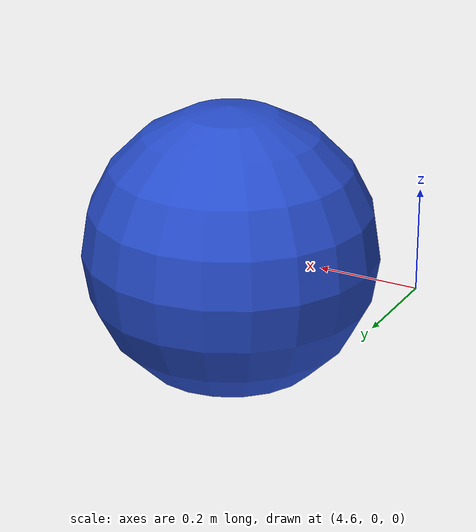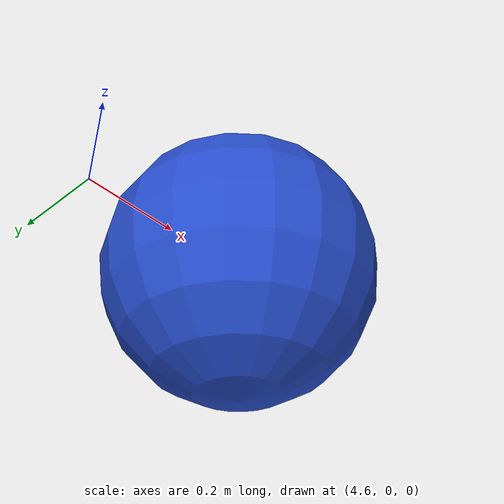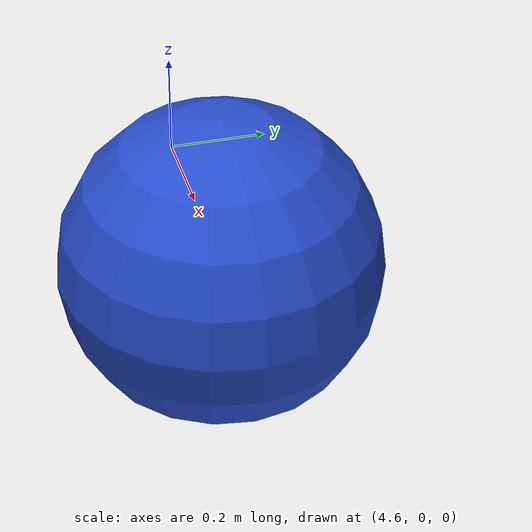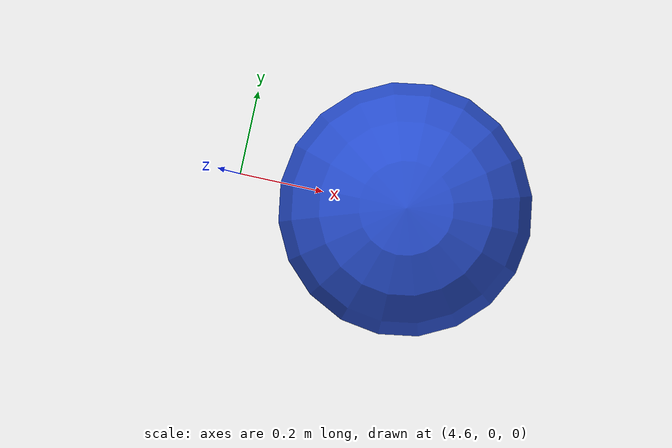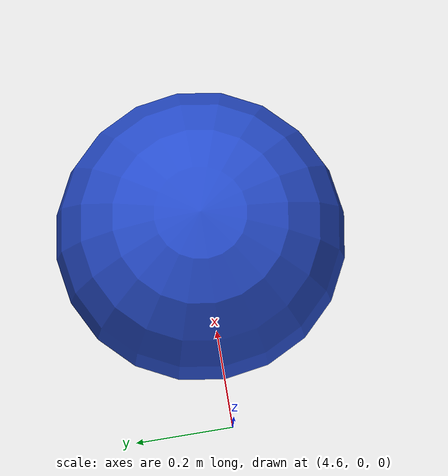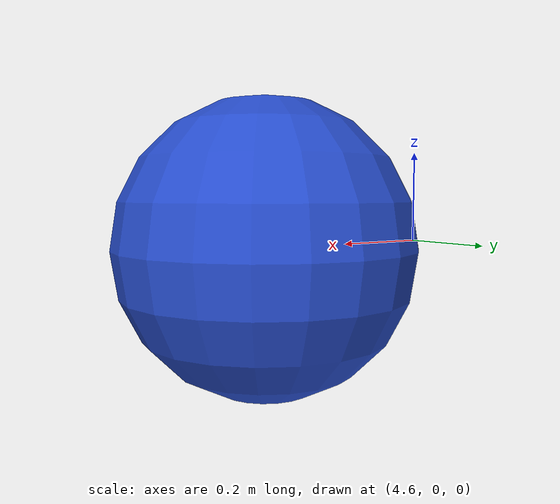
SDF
<?xml version="1.0"?>
<sdf version="1.5">
    <model name="light_source">
        <pose>5 0 0 0 0 0</pose>
        <static>true</static>
        <link name="link">
            <inertial>
                <mass>1.0</mass>
                <inertia>ixx="0.4" ixy="0" ixz="0" iyy="0.4" iyz="0" izz="0.4"</inertia>
            </inertial>
            <collision name="collision">
                <geometry>
                    <sphere>
                        <radius>0.3</radius>
                    </sphere>
                </geometry>
            </collision>
            <visual name="visual">
                <geometry>
                    <sphere>
                        <radius>0.3</radius>
                    </sphere>
                </geometry>
                <material>
                    <script>
                        <uri>file://media/materials/scripts/gazebo.material</uri>
                        <name>Gazebo/Blue</name>
                    </script>
                </material>
            </visual>
        </link>
    </model>
</sdf>
